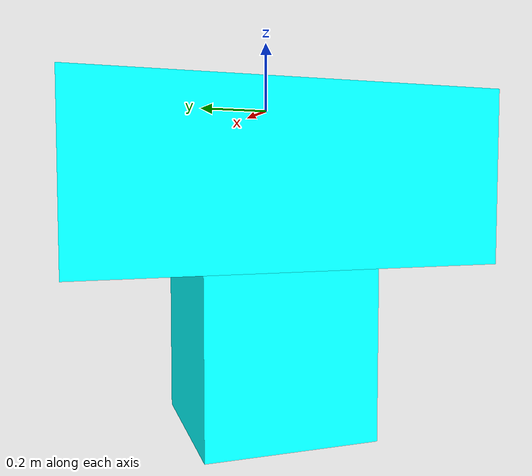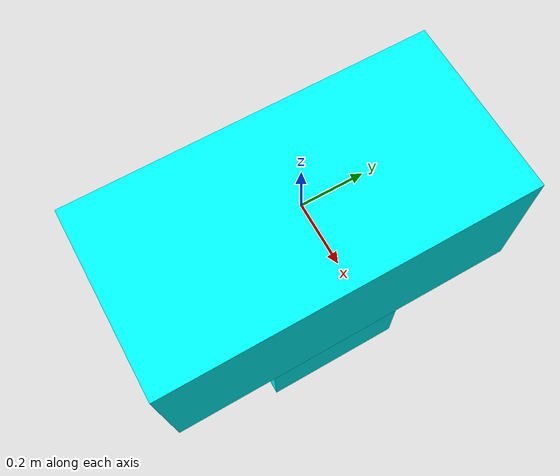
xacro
<?xml version="1.0"?>
<robot name="Test_Bench" xmlns:xacro="http://www.ros.org/wiki/xacro">

    <!-- Test Bench Properties-->
    <xacro:property name="test_rect_width" value=".5"/>
    <xacro:property name="test_rect_length" value=".5"/>
    <xacro:property name="test_rect_height" value=".5"/>
    <xacro:property name="cart_width" value="1.2"/>
    <xacro:property name="cart_length" value=".6"/>
    <xacro:property name="cart_height" value=".5"/>

    <xacro:property name="wheel_radius" value="0.10"/>
    <xacro:property name="wheel_width" value="0.04"/>
    <xacro:property name="wheel_offset" value=".1"/>

    <!-- Bench Base-->
    <link name="base_link">

    </link>

    <!-- Cart and Bench Footprint-->
    <link name="cart_footprint" type="fixed">
        <visual>
            <geometry>
                <box size="${cart_length} ${cart_width} ${cart_height}"/>
            </geometry>
            <material name="Cyan">
                <color rgba="0 1.0 1.0 1.0"/>
            </material>
        </visual>
    </link>
    <joint name="cart_joint" type="fixed">
        <parent link="base_link"/>
        <child link="cart_footprint"/>
        <origin xyz="0.0 0.0 ${-(wheel_radius+wheel_offset)}" rpy="0 0 0"/>
    </joint>

    <link name="bench_footprint" type="fixed">
        <visual>
            <geometry>
                <box size="${test_rect_length} ${test_rect_width} ${test_rect_height}"/>
            </geometry>
            <material name="Cyan">
                <color rgba="0 1.0 1.0 1.0"/>
            </material>
        </visual>
    </link>
    <joint name="bench_joint" type="fixed">
        <parent link="cart_footprint"/>
        <child link="bench_footprint"/>
        <origin xyz="0.0 0.0 ${-(cart_height)}" rpy="0 0 0"/>
    </joint>

</robot>
